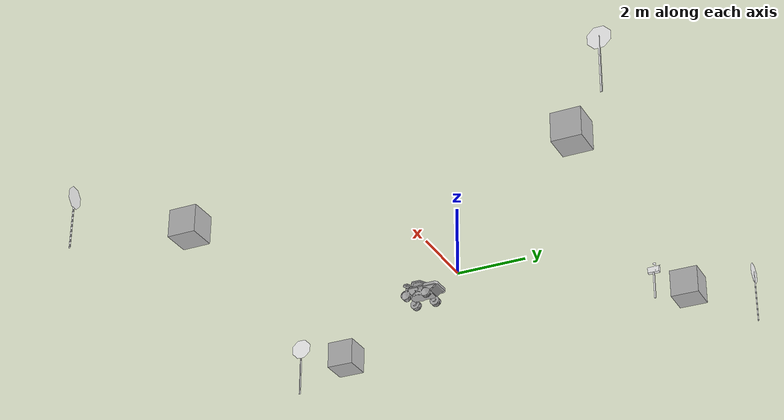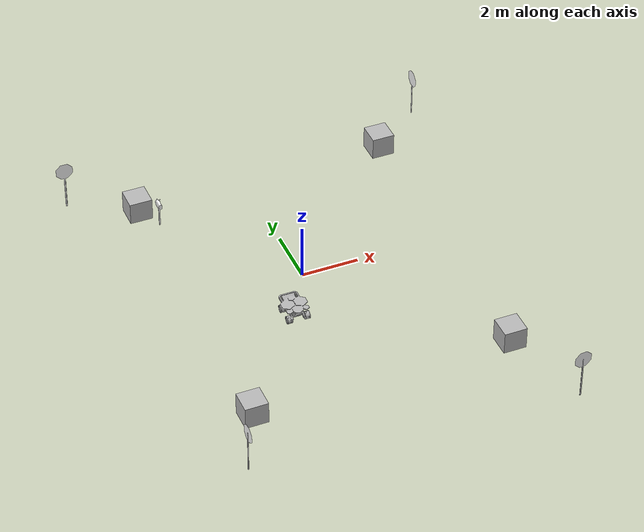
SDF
<?xml version='1.0'?>
<sdf version='1.7'>
  <model name='random_objects'>
    <model name='Mailbox'>
      <link name='link'>
        <collision name='collision'>
          <geometry>
            <mesh>
              <uri>model://mailbox/meshes/mailbox.dae</uri>
            </mesh>
          </geometry>
          <surface/>
        </collision>
        <visual name='visual'>
          <geometry>
            <mesh>
              <uri>model://mailbox/meshes/mailbox.dae</uri>
            </mesh>
          </geometry>
          <material>
            <script>
              <uri>model://mailbox/materials/scripts</uri>
              <uri>model://mailbox/materials/textures</uri>
              <name>Mailbox/Diffuse</name>
            </script>
          </material>
        </visual>
      </link>
      <pose>-3.4216 4.47698 -0.16 0 -0 0</pose>
    </model>
    <model name='Stop Sign_0_clone'>
      <static>1</static>
      <link name='link'>
        <collision name='collision'>
          <geometry>
            <mesh>
              <uri>model://stop_sign/meshes/stop_sign.dae</uri>
            </mesh>
          </geometry>
          <surface/>
        </collision>
        <visual name='visual'>
          <geometry>
            <mesh>
              <uri>model://stop_sign/meshes/stop_sign.dae</uri>
            </mesh>
          </geometry>
          <material>
            <script>
              <uri>model://stop_sign/materials/scripts</uri>
              <uri>model://stop_sign/materials/textures</uri>
              <name>StopSign/Diffuse</name>
            </script>
          </material>
        </visual>
      </link>
      <pose>-4.94576 -7.59217 -0.16 0 -0 1.61541</pose>
    </model>
    <model name='Stop Sign_0_clone_0'>
      <static>1</static>
      <link name='link'>
        <collision name='collision'>
          <geometry>
            <mesh>
              <uri>model://stop_sign/meshes/stop_sign.dae</uri>
            </mesh>
          </geometry>
          <surface/>
        </collision>
        <visual name='visual'>
          <geometry>
            <mesh>
              <uri>model://stop_sign/meshes/stop_sign.dae</uri>
            </mesh>
          </geometry>
          <material>
            <script>
              <uri>model://stop_sign/materials/scripts</uri>
              <uri>model://stop_sign/materials/textures</uri>
              <name>StopSign/Diffuse</name>
            </script>
          </material>
        </visual>
      </link>
      <pose>-6.03772 6.65052 -0.16 0 -0 0</pose>
    </model>
    <model name='Stop Sign_0_clone_1'>
      <static>1</static>
      <link name='link'>
        <collision name='collision'>
          <geometry>
            <mesh>
              <uri>model://stop_sign/meshes/stop_sign.dae</uri>
            </mesh>
          </geometry>
          <surface/>
        </collision>
        <visual name='visual'>
          <geometry>
            <mesh>
              <uri>model://stop_sign/meshes/stop_sign.dae</uri>
            </mesh>
          </geometry>
          <material>
            <script>
              <uri>model://stop_sign/materials/scripts</uri>
              <uri>model://stop_sign/materials/textures</uri>
              <name>StopSign/Diffuse</name>
            </script>
          </material>
        </visual>
      </link>
      <pose>7.08648 6.88153 -0.16 0 0 -1.56745</pose>
    </model>
    <model name='Stop Sign_clone'>
      <static>1</static>
      <link name='link'>
        <collision name='collision'>
          <geometry>
            <mesh>
              <uri>model://stop_sign/meshes/stop_sign.dae</uri>
            </mesh>
          </geometry>
          <surface/>
        </collision>
        <visual name='visual'>
          <geometry>
            <mesh>
              <uri>model://stop_sign/meshes/stop_sign.dae</uri>
            </mesh>
          </geometry>
          <material>
            <script>
              <uri>model://stop_sign/materials/scripts</uri>
              <uri>model://stop_sign/materials/textures</uri>
              <name>StopSign/Diffuse</name>
            </script>
          </material>
        </visual>
      </link>
      <pose>5.99908 -8.57347 -0.16 0 0 -3.05978</pose>
    </model>
    <model name='mars_rover'>
      <static>1</static>
      <link name='link'>
        <collision name='solar_panel_collision'>
          <pose>0 -0.06945 0.47293 0 -0 0</pose>
          <geometry>
            <box>
              <size>0.87974 0.8821 0.02602</size>
            </box>
          </geometry>
          <surface/>
        </collision>
        <collision name='chassis_collision'>
          <pose>0 -0.05 0.31475 0 -0 0</pose>
          <geometry>
            <box>
              <size>0.49522 0.67401 0.28915</size>
            </box>
          </geometry>
          <surface/>
        </collision>
        <collision name='rear_left_bumper_collision'>
          <pose>0.30107 0.3835 0.38976 0 -0 0</pose>
          <geometry>
            <box>
              <size>0.04442 0.38897 0.07918</size>
            </box>
          </geometry>
          <surface/>
        </collision>
        <collision name='rear_right_bumper_collision'>
          <pose>-0.30107 0.3835 0.38976 0 -0 0</pose>
          <geometry>
            <box>
              <size>0.04442 0.38897 0.07918</size>
            </box>
          </geometry>
          <surface/>
        </collision>
        <collision name='rear_bumper_collision'>
          <pose>0 0.59414 0.38976 0 -0 0</pose>
          <geometry>
            <box>
              <size>0.56656 0.04442 0.07918</size>
            </box>
          </geometry>
          <surface/>
        </collision>
        <collision name='bin_back_panel_collision'>
          <pose>0 0.47 0.32114 0.69137 -0 0</pose>
          <geometry>
            <box>
              <size>0.43774 0.212366 0.05173</size>
            </box>
          </geometry>
          <surface/>
        </collision>
        <collision name='bin_left_panel_collision1'>
          <pose>0.22615 0.32897 0.33193 0 -0 0</pose>
          <geometry>
            <box>
              <size>0.01116 0.19338 0.16304</size>
            </box>
          </geometry>
          <surface/>
        </collision>
        <collision name='bin_left_panel_collision2'>
          <pose>0.22615 0.471 0.39308 0 -0 0</pose>
          <geometry>
            <box>
              <size>0.01116 0.15 0.04</size>
            </box>
          </geometry>
          <surface/>
        </collision>
        <collision name='bin_left_panel_collision3'>
          <pose>0.22615 0.45 0.35308 0 -0 0</pose>
          <geometry>
            <box>
              <size>0.01116 0.15 0.04</size>
            </box>
          </geometry>
          <surface/>
        </collision>
        <collision name='bin_left_panel_collision4'>
          <pose>0.22615 0.39308 0.31308 0 -0 0</pose>
          <geometry>
            <box>
              <size>0.01116 0.15 0.04</size>
            </box>
          </geometry>
          <surface/>
        </collision>
        <collision name='bin_right_panel_collision1'>
          <pose>-0.22615 0.32897 0.33193 0 -0 0</pose>
          <geometry>
            <box>
              <size>0.01116 0.19338 0.16304</size>
            </box>
          </geometry>
          <surface/>
        </collision>
        <collision name='bin_right_panel_collision2'>
          <pose>-0.22615 0.471 0.39308 0 -0 0</pose>
          <geometry>
            <box>
              <size>0.01116 0.15 0.04</size>
            </box>
          </geometry>
          <surface/>
        </collision>
        <collision name='bin_right_panel_collision3'>
          <pose>-0.22615 0.45 0.35308 0 -0 0</pose>
          <geometry>
            <box>
              <size>0.01116 0.15 0.04</size>
            </box>
          </geometry>
          <surface/>
        </collision>
        <collision name='bin_right_panel_collision4'>
          <pose>-0.22615 0.39308 0.31308 0 -0 0</pose>
          <geometry>
            <box>
              <size>0.01116 0.15 0.04</size>
            </box>
          </geometry>
          <surface/>
        </collision>
        <collision name='bin_front_panel_collision'>
          <pose>0 0.30047 0.32114 2.26207 -0 0</pose>
          <geometry>
            <box>
              <size>0.43774 0.212366 0.05173</size>
            </box>
          </geometry>
          <surface/>
        </collision>
        <collision name='front_left_wheel_collision'>
          <pose>0.31103 -0.32115 0.1358 1.5707 0 1.5707</pose>
          <geometry>
            <cylinder>
              <radius>0.1358</radius>
              <length>0.1641</length>
            </cylinder>
          </geometry>
          <surface/>
        </collision>
        <collision name='front_right_wheel_collision'>
          <pose>-0.31103 -0.32115 0.1358 1.5707 0 1.5707</pose>
          <geometry>
            <cylinder>
              <radius>0.1358</radius>
              <length>0.1641</length>
            </cylinder>
          </geometry>
          <surface/>
        </collision>
        <collision name='rear_left_wheel_collision'>
          <pose>0.31103 0.28049 0.1358 1.5707 0 1.5707</pose>
          <geometry>
            <cylinder>
              <radius>0.1358</radius>
              <length>0.1641</length>
            </cylinder>
          </geometry>
          <surface/>
        </collision>
        <collision name='rear_right_wheel_collision'>
          <pose>-0.31103 0.28049 0.1358 1.5707 0 1.5707</pose>
          <geometry>
            <cylinder>
              <radius>0.1358</radius>
              <length>0.1641</length>
            </cylinder>
          </geometry>
          <surface/>
        </collision>
        <visual name='visual'>
          <geometry>
            <mesh>
              <uri>model://mars_rover/meshes/rover.dae</uri>
            </mesh>
          </geometry>
        </visual>
      </link>
      <pose>-0.92778 -1.53386 -0.16 0 -0 0</pose>
    </model>
    <model name='number1_0'>
      <pose>5.00525 -5.49046 0.24 0 -0 0</pose>
      <static>1</static>
      <link name='link'>
        <visual name='visual'>
          <geometry>
            <mesh>
              <uri>model://number1/meshes/number.dae</uri>
            </mesh>
          </geometry>
          <material>
            <script>
              <uri>model://number1/materials/scripts</uri>
              <uri>model://number1/materials/textures</uri>
              <name>Number/One</name>
            </script>
          </material>
        </visual>
      </link>
    </model>
    <model name='number2'>
      <pose>-3.97827 -5.50331 0.24 0 -0 0</pose>
      <static>1</static>
      <link name='link'>
        <visual name='visual'>
          <geometry>
            <mesh>
              <uri>model://number1/meshes/number.dae</uri>
            </mesh>
          </geometry>
          <material>
            <script>
              <uri>model://number2/materials/scripts</uri>
              <uri>model://number2/materials/textures</uri>
              <name>Number/Two</name>
            </script>
          </material>
        </visual>
      </link>
    </model>
    <model name='number3'>
      <pose>-3.92317 5.29732 0.24 0 -0 0</pose>
      <static>1</static>
      <link name='link'>
        <visual name='visual'>
          <geometry>
            <mesh>
              <uri>model://number1/meshes/number.dae</uri>
            </mesh>
          </geometry>
          <material>
            <script>
              <uri>model://number3/materials/scripts</uri>
              <uri>model://number3/materials/textures</uri>
              <name>Number/Three</name>
            </script>
          </material>
        </visual>
      </link>
    </model>
    <model name='number4'>
      <pose>5.1435 5.38692 0.24 0 -0 0</pose>
      <static>1</static>
      <link name='link'>
        <visual name='visual'>
          <geometry>
            <mesh>
              <uri>model://number1/meshes/number.dae</uri>
            </mesh>
          </geometry>
          <material>
            <script>
              <uri>model://number4/materials/scripts</uri>
              <uri>model://number4/materials/textures</uri>
              <name>Number/Four</name>
            </script>
          </material>
        </visual>
      </link>
    </model>
    <static>0</static>
    <allow_auto_disable>1</allow_auto_disable>
  </model>
</sdf>
